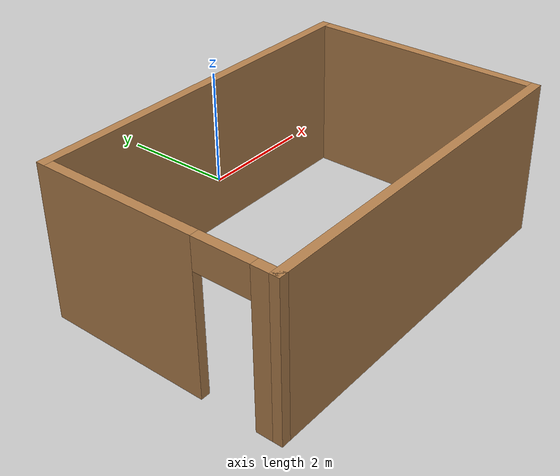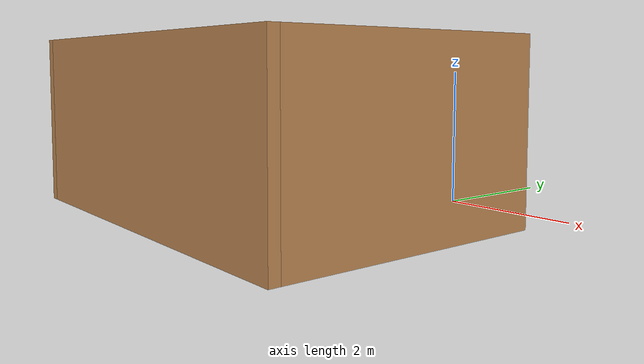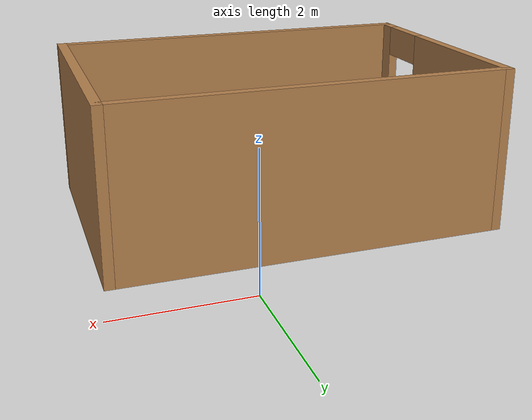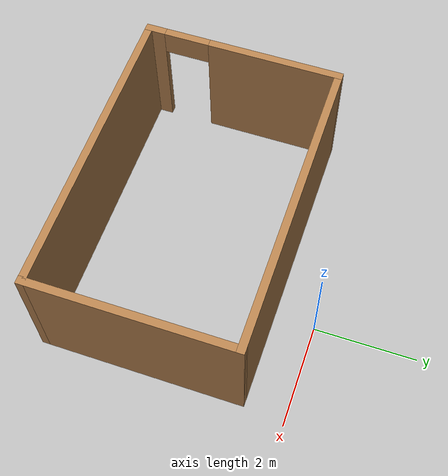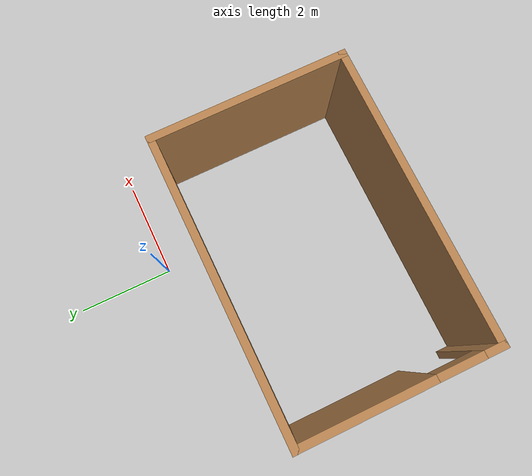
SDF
<?xml version='1.0'?>
<sdf version='1.7'>
  <model name='Arena'>
    <pose>-1.125 -2.3925 0 0 -0 0</pose>
    <link name='Wall_0'>
      <collision name='Wall_0_Collision'>
        <geometry>
          <box>
            <size>6 0.15 2.5</size>
          </box>
        </geometry>
        <pose>0 0 1.25 0 -0 0</pose>
      </collision>
      <visual name='Wall_0_Visual'>
        <pose>0 0 1.25 0 -0 0</pose>
        <geometry>
          <box>
            <size>6 0.15 2.5</size>
          </box>
        </geometry>
        <material>
          <script>
            <uri>file://media/materials/scripts/gazebo.material</uri>
            <name>Gazebo/Wood</name>
          </script>
          <ambient>1 1 1 1</ambient>
        </material>
        <meta>
          <layer>0</layer>
        </meta>
      </visual>
      <pose>0 1.5325 0 0 -0 0</pose>
    </link>
    <link name='Wall_1'>
      <collision name='Wall_1_Collision'>
        <geometry>
          <box>
            <size>4 0.15 2.5</size>
          </box>
        </geometry>
        <pose>0 0 1.25 0 -0 0</pose>
      </collision>
      <visual name='Wall_1_Visual'>
        <pose>0 0 1.25 0 -0 0</pose>
        <geometry>
          <box>
            <size>4 0.15 2.5</size>
          </box>
        </geometry>
        <material>
          <script>
            <uri>file://media/materials/scripts/gazebo.material</uri>
            <name>Gazebo/Wood</name>
          </script>
          <ambient>1 1 1 1</ambient>
        </material>
        <meta>
          <layer>0</layer>
        </meta>
      </visual>
      <pose>2.925 -0.3925 0 0 -0 -1.5708</pose>
    </link>
    <link name='Wall_2'>
      <collision name='Wall_2_Collision'>
        <geometry>
          <box>
            <size>6 0.15 2.5</size>
          </box>
        </geometry>
        <pose>0 0 1.25 0 -0 0</pose>
      </collision>
      <visual name='Wall_2_Visual'>
        <pose>0 0 1.25 0 -0 0</pose>
        <geometry>
          <box>
            <size>6 0.15 2.5</size>
          </box>
        </geometry>
        <material>
          <script>
            <uri>file://media/materials/scripts/gazebo.material</uri>
            <name>Gazebo/Wood</name>
          </script>
          <ambient>1 1 1 1</ambient>
        </material>
        <meta>
          <layer>0</layer>
        </meta>
      </visual>
      <pose>0 -2.3175 0 0 -0 3.14159</pose>
    </link>
    <link name='Wall_3'>
      <pose>-2.925 -0.3925 0 0 -0 1.5708</pose>
      <visual name='Wall_3_Visual_0'>
        <pose>-1.79171 0 1.25 0 -0 0</pose>
        <geometry>
          <box>
            <size>0.416584 0.15 2.5</size>
          </box>
        </geometry>
        <material>
          <script>
            <uri>file://media/materials/scripts/gazebo.material</uri>
            <name>Gazebo/Wood</name>
          </script>
          <ambient>1 1 1 1</ambient>
        </material>
        <meta>
          <layer>0</layer>
        </meta>
      </visual>
      <collision name='Wall_3_Collision_0'>
        <geometry>
          <box>
            <size>0.416584 0.15 2.5</size>
          </box>
        </geometry>
        <pose>-1.79171 0 1.25 0 -0 0</pose>
      </collision>
      <visual name='Wall_3_Visual_1'>
        <pose>0.658292 0 1.25 0 -0 0</pose>
        <geometry>
          <box>
            <size>2.68342 0.15 2.5</size>
          </box>
        </geometry>
        <material>
          <script>
            <uri>file://media/materials/scripts/gazebo.material</uri>
            <name>Gazebo/Wood</name>
          </script>
          <ambient>1 1 1 1</ambient>
        </material>
        <meta>
          <layer>0</layer>
        </meta>
      </visual>
      <collision name='Wall_3_Collision_1'>
        <geometry>
          <box>
            <size>2.68342 0.15 2.5</size>
          </box>
        </geometry>
        <pose>0.658292 0 1.25 0 -0 0</pose>
      </collision>
      <visual name='Wall_3_Visual_2'>
        <pose>-1.13342 0 2.25 0 -0 0</pose>
        <geometry>
          <box>
            <size>0.9 0.15 0.5</size>
          </box>
        </geometry>
        <material>
          <script>
            <uri>file://media/materials/scripts/gazebo.material</uri>
            <name>Gazebo/Wood</name>
          </script>
          <ambient>1 1 1 1</ambient>
        </material>
        <meta>
          <layer>0</layer>
        </meta>
      </visual>
      <collision name='Wall_3_Collision_2'>
        <geometry>
          <box>
            <size>0.9 0.15 0.5</size>
          </box>
        </geometry>
        <pose>-1.13342 0 2.25 0 -0 0</pose>
      </collision>
    </link>
    <static>1</static>
  </model>
</sdf>
